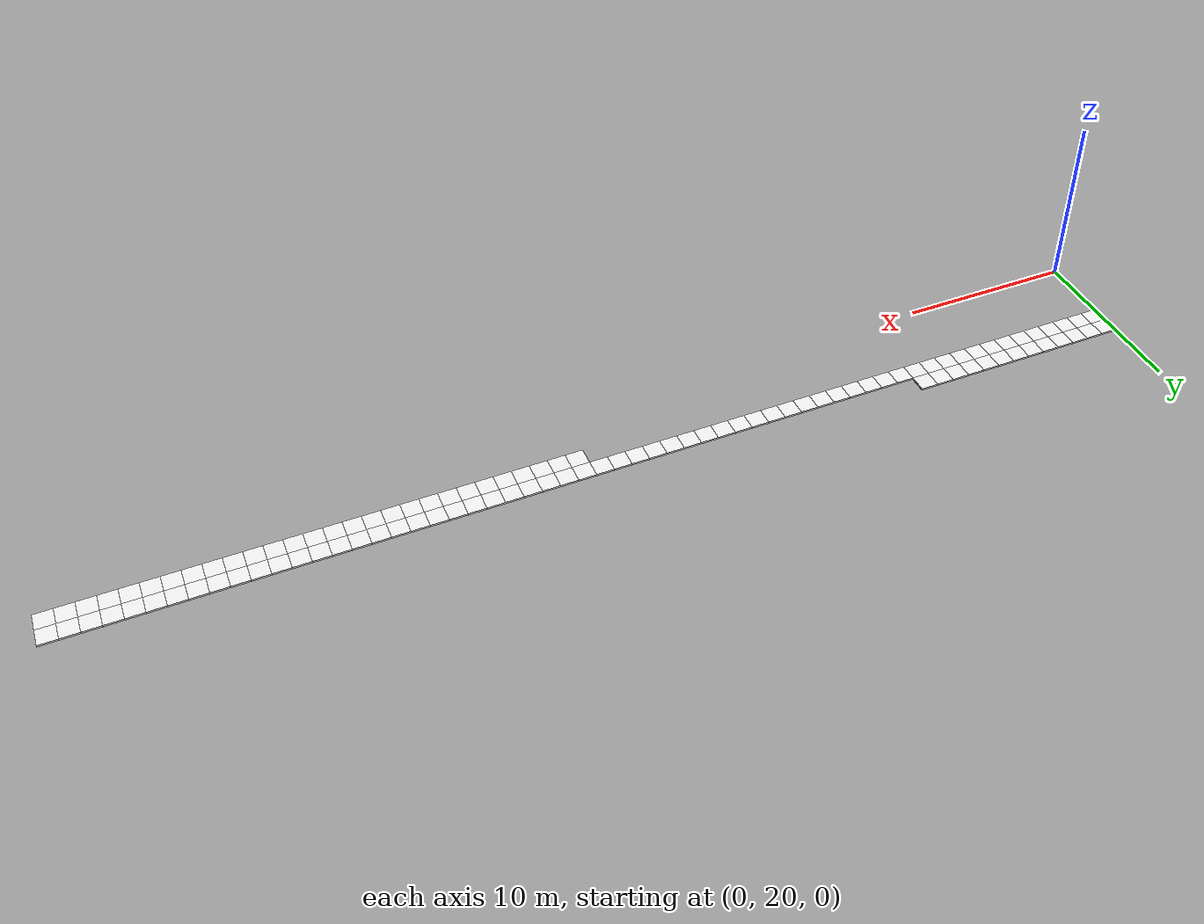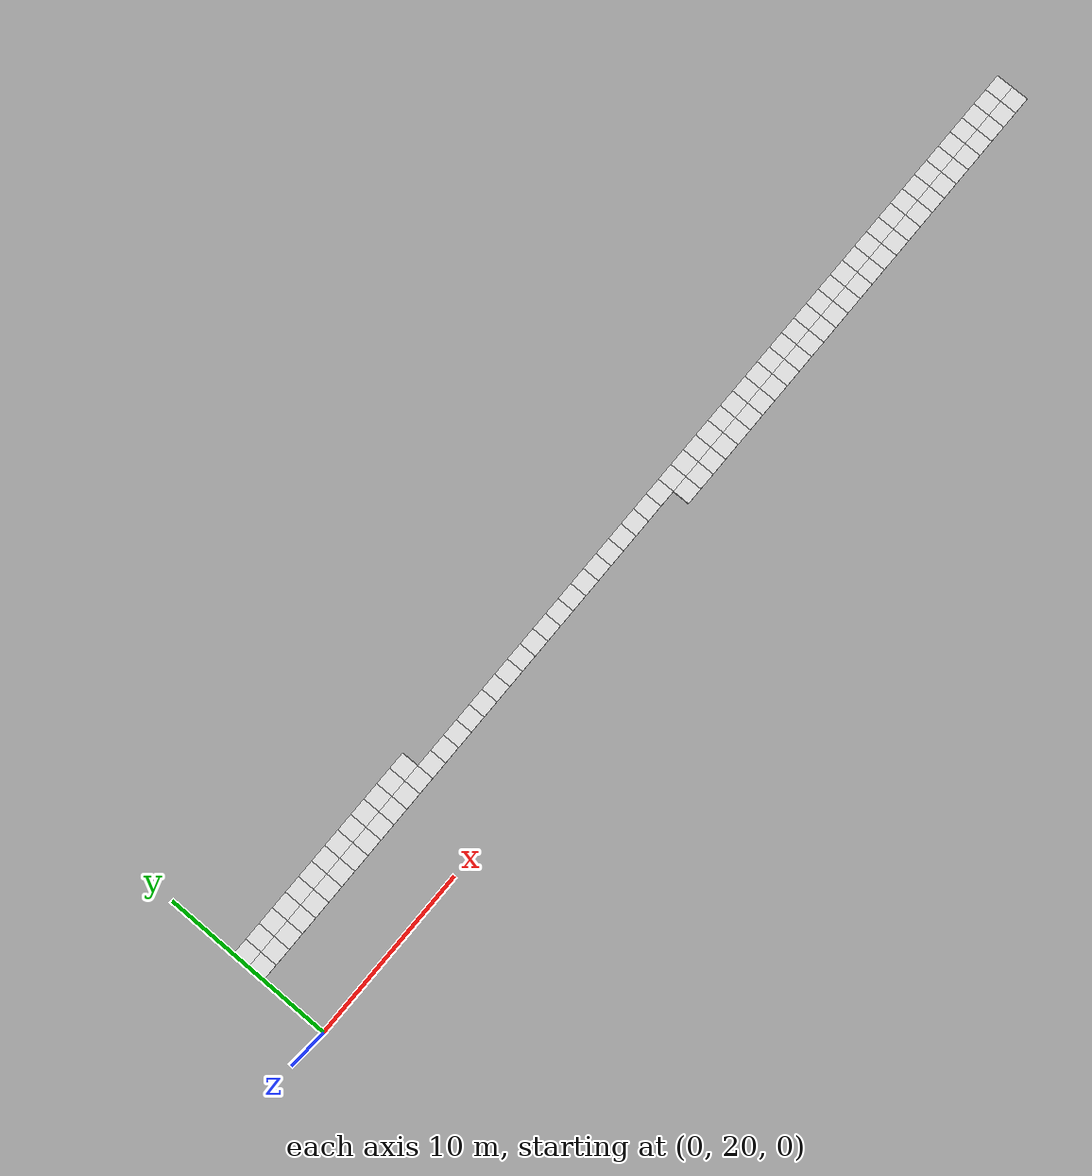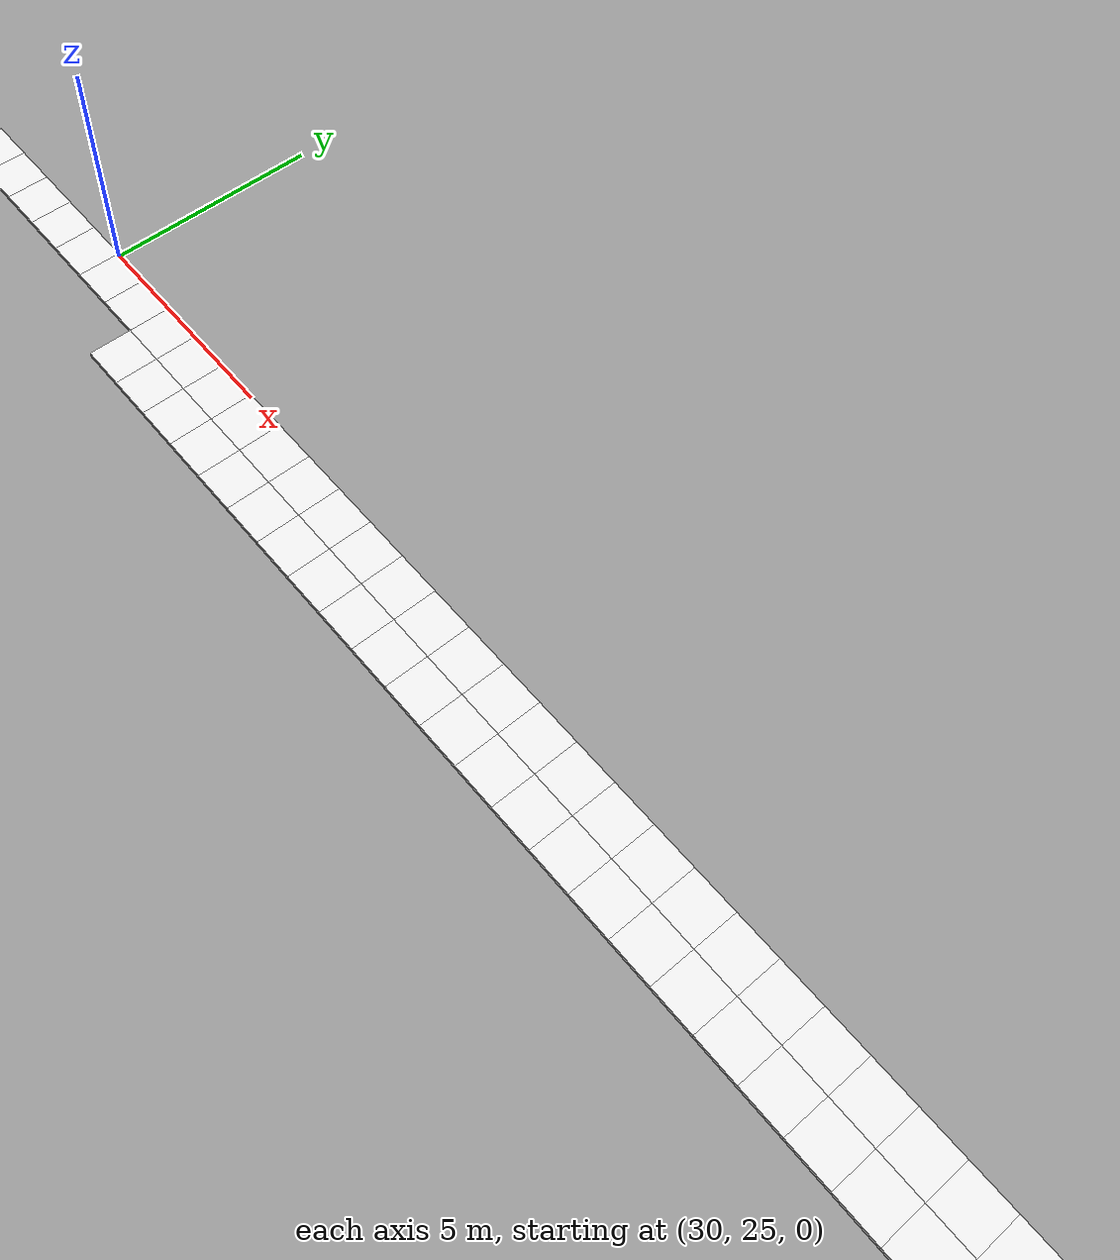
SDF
<sdf version="1.6">
 <world name="grid_world">
  <model name="cell_32_23">
   <static>true</static>
   <link name="link">
    <collision name="collision"><geometry><box><size>1 1 0.1</size></box></geometry></collision>
    <visual name="visual">
     <geometry><box><size>1 1 0.1</size></box></geometry>
     <material>
      <script><uri>file://media/materials/scripts/gazebo.material</uri><name>Gazebo/White</name></script>
     </material>
    </visual>
    <pose>32.5 23.5 0.05 0 0 0</pose>
   </link>
  </model>
  <model name="cell_33_23">
   <static>true</static>
   <link name="link">
    <collision name="collision"><geometry><box><size>1 1 0.1</size></box></geometry></collision>
    <visual name="visual">
     <geometry><box><size>1 1 0.1</size></box></geometry>
     <material>
      <script><uri>file://media/materials/scripts/gazebo.material</uri><name>Gazebo/White</name></script>
     </material>
    </visual>
    <pose>33.5 23.5 0.05 0 0 0</pose>
   </link>
  </model>
  <model name="cell_34_23">
   <static>true</static>
   <link name="link">
    <collision name="collision"><geometry><box><size>1 1 0.1</size></box></geometry></collision>
    <visual name="visual">
     <geometry><box><size>1 1 0.1</size></box></geometry>
     <material>
      <script><uri>file://media/materials/scripts/gazebo.material</uri><name>Gazebo/White</name></script>
     </material>
    </visual>
    <pose>34.5 23.5 0.05 0 0 0</pose>
   </link>
  </model>
  <model name="cell_35_23">
   <static>true</static>
   <link name="link">
    <collision name="collision"><geometry><box><size>1 1 0.1</size></box></geometry></collision>
    <visual name="visual">
     <geometry><box><size>1 1 0.1</size></box></geometry>
     <material>
      <script><uri>file://media/materials/scripts/gazebo.material</uri><name>Gazebo/White</name></script>
     </material>
    </visual>
    <pose>35.5 23.5 0.05 0 0 0</pose>
   </link>
  </model>
  <model name="cell_36_23">
   <static>true</static>
   <link name="link">
    <collision name="collision"><geometry><box><size>1 1 0.1</size></box></geometry></collision>
    <visual name="visual">
     <geometry><box><size>1 1 0.1</size></box></geometry>
     <material>
      <script><uri>file://media/materials/scripts/gazebo.material</uri><name>Gazebo/White</name></script>
     </material>
    </visual>
    <pose>36.5 23.5 0.05 0 0 0</pose>
   </link>
  </model>
  <model name="cell_37_23">
   <static>true</static>
   <link name="link">
    <collision name="collision"><geometry><box><size>1 1 0.1</size></box></geometry></collision>
    <visual name="visual">
     <geometry><box><size>1 1 0.1</size></box></geometry>
     <material>
      <script><uri>file://media/materials/scripts/gazebo.material</uri><name>Gazebo/White</name></script>
     </material>
    </visual>
    <pose>37.5 23.5 0.05 0 0 0</pose>
   </link>
  </model>
  <model name="cell_38_23">
   <static>true</static>
   <link name="link">
    <collision name="collision"><geometry><box><size>1 1 0.1</size></box></geometry></collision>
    <visual name="visual">
     <geometry><box><size>1 1 0.1</size></box></geometry>
     <material>
      <script><uri>file://media/materials/scripts/gazebo.material</uri><name>Gazebo/White</name></script>
     </material>
    </visual>
    <pose>38.5 23.5 0.05 0 0 0</pose>
   </link>
  </model>
  <model name="cell_39_23">
   <static>true</static>
   <link name="link">
    <collision name="collision"><geometry><box><size>1 1 0.1</size></box></geometry></collision>
    <visual name="visual">
     <geometry><box><size>1 1 0.1</size></box></geometry>
     <material>
      <script><uri>file://media/materials/scripts/gazebo.material</uri><name>Gazebo/White</name></script>
     </material>
    </visual>
    <pose>39.5 23.5 0.05 0 0 0</pose>
   </link>
  </model>
  <model name="cell_40_23">
   <static>true</static>
   <link name="link">
    <collision name="collision"><geometry><box><size>1 1 0.1</size></box></geometry></collision>
    <visual name="visual">
     <geometry><box><size>1 1 0.1</size></box></geometry>
     <material>
      <script><uri>file://media/materials/scripts/gazebo.material</uri><name>Gazebo/White</name></script>
     </material>
    </visual>
    <pose>40.5 23.5 0.05 0 0 0</pose>
   </link>
  </model>
  <model name="cell_41_23">
   <static>true</static>
   <link name="link">
    <collision name="collision"><geometry><box><size>1 1 0.1</size></box></geometry></collision>
    <visual name="visual">
     <geometry><box><size>1 1 0.1</size></box></geometry>
     <material>
      <script><uri>file://media/materials/scripts/gazebo.material</uri><name>Gazebo/White</name></script>
     </material>
    </visual>
    <pose>41.5 23.5 0.05 0 0 0</pose>
   </link>
  </model>
  <model name="cell_42_23">
   <static>true</static>
   <link name="link">
    <collision name="collision"><geometry><box><size>1 1 0.1</size></box></geometry></collision>
    <visual name="visual">
     <geometry><box><size>1 1 0.1</size></box></geometry>
     <material>
      <script><uri>file://media/materials/scripts/gazebo.material</uri><name>Gazebo/White</name></script>
     </material>
    </visual>
    <pose>42.5 23.5 0.05 0 0 0</pose>
   </link>
  </model>
  <model name="cell_43_23">
   <static>true</static>
   <link name="link">
    <collision name="collision"><geometry><box><size>1 1 0.1</size></box></geometry></collision>
    <visual name="visual">
     <geometry><box><size>1 1 0.1</size></box></geometry>
     <material>
      <script><uri>file://media/materials/scripts/gazebo.material</uri><name>Gazebo/White</name></script>
     </material>
    </visual>
    <pose>43.5 23.5 0.05 0 0 0</pose>
   </link>
  </model>
  <model name="cell_44_23">
   <static>true</static>
   <link name="link">
    <collision name="collision"><geometry><box><size>1 1 0.1</size></box></geometry></collision>
    <visual name="visual">
     <geometry><box><size>1 1 0.1</size></box></geometry>
     <material>
      <script><uri>file://media/materials/scripts/gazebo.material</uri><name>Gazebo/White</name></script>
     </material>
    </visual>
    <pose>44.5 23.5 0.05 0 0 0</pose>
   </link>
  </model>
  <model name="cell_45_23">
   <static>true</static>
   <link name="link">
    <collision name="collision"><geometry><box><size>1 1 0.1</size></box></geometry></collision>
    <visual name="visual">
     <geometry><box><size>1 1 0.1</size></box></geometry>
     <material>
      <script><uri>file://media/materials/scripts/gazebo.material</uri><name>Gazebo/White</name></script>
     </material>
    </visual>
    <pose>45.5 23.5 0.05 0 0 0</pose>
   </link>
  </model>
  <model name="cell_46_23">
   <static>true</static>
   <link name="link">
    <collision name="collision"><geometry><box><size>1 1 0.1</size></box></geometry></collision>
    <visual name="visual">
     <geometry><box><size>1 1 0.1</size></box></geometry>
     <material>
      <script><uri>file://media/materials/scripts/gazebo.material</uri><name>Gazebo/White</name></script>
     </material>
    </visual>
    <pose>46.5 23.5 0.05 0 0 0</pose>
   </link>
  </model>
  <model name="cell_47_23">
   <static>true</static>
   <link name="link">
    <collision name="collision"><geometry><box><size>1 1 0.1</size></box></geometry></collision>
    <visual name="visual">
     <geometry><box><size>1 1 0.1</size></box></geometry>
     <material>
      <script><uri>file://media/materials/scripts/gazebo.material</uri><name>Gazebo/White</name></script>
     </material>
    </visual>
    <pose>47.5 23.5 0.05 0 0 0</pose>
   </link>
  </model>
  <model name="cell_48_23">
   <static>true</static>
   <link name="link">
    <collision name="collision"><geometry><box><size>1 1 0.1</size></box></geometry></collision>
    <visual name="visual">
     <geometry><box><size>1 1 0.1</size></box></geometry>
     <material>
      <script><uri>file://media/materials/scripts/gazebo.material</uri><name>Gazebo/White</name></script>
     </material>
    </visual>
    <pose>48.5 23.5 0.05 0 0 0</pose>
   </link>
  </model>
  <model name="cell_49_23">
   <static>true</static>
   <link name="link">
    <collision name="collision"><geometry><box><size>1 1 0.1</size></box></geometry></collision>
    <visual name="visual">
     <geometry><box><size>1 1 0.1</size></box></geometry>
     <material>
      <script><uri>file://media/materials/scripts/gazebo.material</uri><name>Gazebo/White</name></script>
     </material>
    </visual>
    <pose>49.5 23.5 0.05 0 0 0</pose>
   </link>
  </model>
  <model name="cell_50_23">
   <static>true</static>
   <link name="link">
    <collision name="collision"><geometry><box><size>1 1 0.1</size></box></geometry></collision>
    <visual name="visual">
     <geometry><box><size>1 1 0.1</size></box></geometry>
     <material>
      <script><uri>file://media/materials/scripts/gazebo.material</uri><name>Gazebo/White</name></script>
     </material>
    </visual>
    <pose>50.5 23.5 0.05 0 0 0</pose>
   </link>
  </model>
  <model name="cell_51_23">
   <static>true</static>
   <link name="link">
    <collision name="collision"><geometry><box><size>1 1 0.1</size></box></geometry></collision>
    <visual name="visual">
     <geometry><box><size>1 1 0.1</size></box></geometry>
     <material>
      <script><uri>file://media/materials/scripts/gazebo.material</uri><name>Gazebo/White</name></script>
     </material>
    </visual>
    <pose>51.5 23.5 0.05 0 0 0</pose>
   </link>
  </model>
  <model name="cell_52_23">
   <static>true</static>
   <link name="link">
    <collision name="collision"><geometry><box><size>1 1 0.1</size></box></geometry></collision>
    <visual name="visual">
     <geometry><box><size>1 1 0.1</size></box></geometry>
     <material>
      <script><uri>file://media/materials/scripts/gazebo.material</uri><name>Gazebo/White</name></script>
     </material>
    </visual>
    <pose>52.5 23.5 0.05 0 0 0</pose>
   </link>
  </model>
  <model name="cell_53_23">
   <static>true</static>
   <link name="link">
    <collision name="collision"><geometry><box><size>1 1 0.1</size></box></geometry></collision>
    <visual name="visual">
     <geometry><box><size>1 1 0.1</size></box></geometry>
     <material>
      <script><uri>file://media/materials/scripts/gazebo.material</uri><name>Gazebo/White</name></script>
     </material>
    </visual>
    <pose>53.5 23.5 0.05 0 0 0</pose>
   </link>
  </model>
  <model name="cell_54_23">
   <static>true</static>
   <link name="link">
    <collision name="collision"><geometry><box><size>1 1 0.1</size></box></geometry></collision>
    <visual name="visual">
     <geometry><box><size>1 1 0.1</size></box></geometry>
     <material>
      <script><uri>file://media/materials/scripts/gazebo.material</uri><name>Gazebo/White</name></script>
     </material>
    </visual>
    <pose>54.5 23.5 0.05 0 0 0</pose>
   </link>
  </model>
  <model name="cell_55_23">
   <static>true</static>
   <link name="link">
    <collision name="collision"><geometry><box><size>1 1 0.1</size></box></geometry></collision>
    <visual name="visual">
     <geometry><box><size>1 1 0.1</size></box></geometry>
     <material>
      <script><uri>file://media/materials/scripts/gazebo.material</uri><name>Gazebo/White</name></script>
     </material>
    </visual>
    <pose>55.5 23.5 0.05 0 0 0</pose>
   </link>
  </model>
  <model name="cell_56_23">
   <static>true</static>
   <link name="link">
    <collision name="collision"><geometry><box><size>1 1 0.1</size></box></geometry></collision>
    <visual name="visual">
     <geometry><box><size>1 1 0.1</size></box></geometry>
     <material>
      <script><uri>file://media/materials/scripts/gazebo.material</uri><name>Gazebo/White</name></script>
     </material>
    </visual>
    <pose>56.5 23.5 0.05 0 0 0</pose>
   </link>
  </model>
  <model name="cell_57_23">
   <static>true</static>
   <link name="link">
    <collision name="collision"><geometry><box><size>1 1 0.1</size></box></geometry></collision>
    <visual name="visual">
     <geometry><box><size>1 1 0.1</size></box></geometry>
     <material>
      <script><uri>file://media/materials/scripts/gazebo.material</uri><name>Gazebo/White</name></script>
     </material>
    </visual>
    <pose>57.5 23.5 0.05 0 0 0</pose>
   </link>
  </model>
  <model name="cell_58_23">
   <static>true</static>
   <link name="link">
    <collision name="collision"><geometry><box><size>1 1 0.1</size></box></geometry></collision>
    <visual name="visual">
     <geometry><box><size>1 1 0.1</size></box></geometry>
     <material>
      <script><uri>file://media/materials/scripts/gazebo.material</uri><name>Gazebo/White</name></script>
     </material>
    </visual>
    <pose>58.5 23.5 0.05 0 0 0</pose>
   </link>
  </model>
  <model name="cell_59_23">
   <static>true</static>
   <link name="link">
    <collision name="collision"><geometry><box><size>1 1 0.1</size></box></geometry></collision>
    <visual name="visual">
     <geometry><box><size>1 1 0.1</size></box></geometry>
     <material>
      <script><uri>file://media/materials/scripts/gazebo.material</uri><name>Gazebo/White</name></script>
     </material>
    </visual>
    <pose>59.5 23.5 0.05 0 0 0</pose>
   </link>
  </model>
  <model name="cell_0_24">
   <static>true</static>
   <link name="link">
    <collision name="collision"><geometry><box><size>1 1 0.1</size></box></geometry></collision>
    <visual name="visual">
     <geometry><box><size>1 1 0.1</size></box></geometry>
     <material>
      <script><uri>file://media/materials/scripts/gazebo.material</uri><name>Gazebo/White</name></script>
     </material>
    </visual>
    <pose>0.5 24.5 0.05 0 0 0</pose>
   </link>
  </model>
  <model name="cell_1_24">
   <static>true</static>
   <link name="link">
    <collision name="collision"><geometry><box><size>1 1 0.1</size></box></geometry></collision>
    <visual name="visual">
     <geometry><box><size>1 1 0.1</size></box></geometry>
     <material>
      <script><uri>file://media/materials/scripts/gazebo.material</uri><name>Gazebo/White</name></script>
     </material>
    </visual>
    <pose>1.5 24.5 0.05 0 0 0</pose>
   </link>
  </model>
  <model name="cell_2_24">
   <static>true</static>
   <link name="link">
    <collision name="collision"><geometry><box><size>1 1 0.1</size></box></geometry></collision>
    <visual name="visual">
     <geometry><box><size>1 1 0.1</size></box></geometry>
     <material>
      <script><uri>file://media/materials/scripts/gazebo.material</uri><name>Gazebo/White</name></script>
     </material>
    </visual>
    <pose>2.5 24.5 0.05 0 0 0</pose>
   </link>
  </model>
  <model name="cell_3_24">
   <static>true</static>
   <link name="link">
    <collision name="collision"><geometry><box><size>1 1 0.1</size></box></geometry></collision>
    <visual name="visual">
     <geometry><box><size>1 1 0.1</size></box></geometry>
     <material>
      <script><uri>file://media/materials/scripts/gazebo.material</uri><name>Gazebo/White</name></script>
     </material>
    </visual>
    <pose>3.5 24.5 0.05 0 0 0</pose>
   </link>
  </model>
  <model name="cell_4_24">
   <static>true</static>
   <link name="link">
    <collision name="collision"><geometry><box><size>1 1 0.1</size></box></geometry></collision>
    <visual name="visual">
     <geometry><box><size>1 1 0.1</size></box></geometry>
     <material>
      <script><uri>file://media/materials/scripts/gazebo.material</uri><name>Gazebo/White</name></script>
     </material>
    </visual>
    <pose>4.5 24.5 0.05 0 0 0</pose>
   </link>
  </model>
  <model name="cell_5_24">
   <static>true</static>
   <link name="link">
    <collision name="collision"><geometry><box><size>1 1 0.1</size></box></geometry></collision>
    <visual name="visual">
     <geometry><box><size>1 1 0.1</size></box></geometry>
     <material>
      <script><uri>file://media/materials/scripts/gazebo.material</uri><name>Gazebo/White</name></script>
     </material>
    </visual>
    <pose>5.5 24.5 0.05 0 0 0</pose>
   </link>
  </model>
  <model name="cell_6_24">
   <static>true</static>
   <link name="link">
    <collision name="collision"><geometry><box><size>1 1 0.1</size></box></geometry></collision>
    <visual name="visual">
     <geometry><box><size>1 1 0.1</size></box></geometry>
     <material>
      <script><uri>file://media/materials/scripts/gazebo.material</uri><name>Gazebo/White</name></script>
     </material>
    </visual>
    <pose>6.5 24.5 0.05 0 0 0</pose>
   </link>
  </model>
  <model name="cell_7_24">
   <static>true</static>
   <link name="link">
    <collision name="collision"><geometry><box><size>1 1 0.1</size></box></geometry></collision>
    <visual name="visual">
     <geometry><box><size>1 1 0.1</size></box></geometry>
     <material>
      <script><uri>file://media/materials/scripts/gazebo.material</uri><name>Gazebo/White</name></script>
     </material>
    </visual>
    <pose>7.5 24.5 0.05 0 0 0</pose>
   </link>
  </model>
  <model name="cell_8_24">
   <static>true</static>
   <link name="link">
    <collision name="collision"><geometry><box><size>1 1 0.1</size></box></geometry></collision>
    <visual name="visual">
     <geometry><box><size>1 1 0.1</size></box></geometry>
     <material>
      <script><uri>file://media/materials/scripts/gazebo.material</uri><name>Gazebo/White</name></script>
     </material>
    </visual>
    <pose>8.5 24.5 0.05 0 0 0</pose>
   </link>
  </model>
  <model name="cell_9_24">
   <static>true</static>
   <link name="link">
    <collision name="collision"><geometry><box><size>1 1 0.1</size></box></geometry></collision>
    <visual name="visual">
     <geometry><box><size>1 1 0.1</size></box></geometry>
     <material>
      <script><uri>file://media/materials/scripts/gazebo.material</uri><name>Gazebo/White</name></script>
     </material>
    </visual>
    <pose>9.5 24.5 0.05 0 0 0</pose>
   </link>
  </model>
  <model name="cell_10_24">
   <static>true</static>
   <link name="link">
    <collision name="collision"><geometry><box><size>1 1 0.1</size></box></geometry></collision>
    <visual name="visual">
     <geometry><box><size>1 1 0.1</size></box></geometry>
     <material>
      <script><uri>file://media/materials/scripts/gazebo.material</uri><name>Gazebo/White</name></script>
     </material>
    </visual>
    <pose>10.5 24.5 0.05 0 0 0</pose>
   </link>
  </model>
  <model name="cell_11_24">
   <static>true</static>
   <link name="link">
    <collision name="collision"><geometry><box><size>1 1 0.1</size></box></geometry></collision>
    <visual name="visual">
     <geometry><box><size>1 1 0.1</size></box></geometry>
     <material>
      <script><uri>file://media/materials/scripts/gazebo.material</uri><name>Gazebo/White</name></script>
     </material>
    </visual>
    <pose>11.5 24.5 0.05 0 0 0</pose>
   </link>
  </model>
  <model name="cell_12_24">
   <static>true</static>
   <link name="link">
    <collision name="collision"><geometry><box><size>1 1 0.1</size></box></geometry></collision>
    <visual name="visual">
     <geometry><box><size>1 1 0.1</size></box></geometry>
     <material>
      <script><uri>file://media/materials/scripts/gazebo.material</uri><name>Gazebo/White</name></script>
     </material>
    </visual>
    <pose>12.5 24.5 0.05 0 0 0</pose>
   </link>
  </model>
  <model name="cell_13_24">
   <static>true</static>
   <link name="link">
    <collision name="collision"><geometry><box><size>1 1 0.1</size></box></geometry></collision>
    <visual name="visual">
     <geometry><box><size>1 1 0.1</size></box></geometry>
     <material>
      <script><uri>file://media/materials/scripts/gazebo.material</uri><name>Gazebo/White</name></script>
     </material>
    </visual>
    <pose>13.5 24.5 0.05 0 0 0</pose>
   </link>
  </model>
  <model name="cell_14_24">
   <static>true</static>
   <link name="link">
    <collision name="collision"><geometry><box><size>1 1 0.1</size></box></geometry></collision>
    <visual name="visual">
     <geometry><box><size>1 1 0.1</size></box></geometry>
     <material>
      <script><uri>file://media/materials/scripts/gazebo.material</uri><name>Gazebo/White</name></script>
     </material>
    </visual>
    <pose>14.5 24.5 0.05 0 0 0</pose>
   </link>
  </model>
  <model name="cell_15_24">
   <static>true</static>
   <link name="link">
    <collision name="collision"><geometry><box><size>1 1 0.1</size></box></geometry></collision>
    <visual name="visual">
     <geometry><box><size>1 1 0.1</size></box></geometry>
     <material>
      <script><uri>file://media/materials/scripts/gazebo.material</uri><name>Gazebo/White</name></script>
     </material>
    </visual>
    <pose>15.5 24.5 0.05 0 0 0</pose>
   </link>
  </model>
  <model name="cell_16_24">
   <static>true</static>
   <link name="link">
    <collision name="collision"><geometry><box><size>1 1 0.1</size></box></geometry></collision>
    <visual name="visual">
     <geometry><box><size>1 1 0.1</size></box></geometry>
     <material>
      <script><uri>file://media/materials/scripts/gazebo.material</uri><name>Gazebo/White</name></script>
     </material>
    </visual>
    <pose>16.5 24.5 0.05 0 0 0</pose>
   </link>
  </model>
  <model name="cell_17_24">
   <static>true</static>
   <link name="link">
    <collision name="collision"><geometry><box><size>1 1 0.1</size></box></geometry></collision>
    <visual name="visual">
     <geometry><box><size>1 1 0.1</size></box></geometry>
     <material>
      <script><uri>file://media/materials/scripts/gazebo.material</uri><name>Gazebo/White</name></script>
     </material>
    </visual>
    <pose>17.5 24.5 0.05 0 0 0</pose>
   </link>
  </model>
  <model name="cell_18_24">
   <static>true</static>
   <link name="link">
    <collision name="collision"><geometry><box><size>1 1 0.1</size></box></geometry></collision>
    <visual name="visual">
     <geometry><box><size>1 1 0.1</size></box></geometry>
     <material>
      <script><uri>file://media/materials/scripts/gazebo.material</uri><name>Gazebo/White</name></script>
     </material>
    </visual>
    <pose>18.5 24.5 0.05 0 0 0</pose>
   </link>
  </model>
  <model name="cell_19_24">
   <static>true</static>
   <link name="link">
    <collision name="collision"><geometry><box><size>1 1 0.1</size></box></geometry></collision>
    <visual name="visual">
     <geometry><box><size>1 1 0.1</size></box></geometry>
     <material>
      <script><uri>file://media/materials/scripts/gazebo.material</uri><name>Gazebo/White</name></script>
     </material>
    </visual>
    <pose>19.5 24.5 0.05 0 0 0</pose>
   </link>
  </model>
  <model name="cell_20_24">
   <static>true</static>
   <link name="link">
    <collision name="collision"><geometry><box><size>1 1 0.1</size></box></geometry></collision>
    <visual name="visual">
     <geometry><box><size>1 1 0.1</size></box></geometry>
     <material>
      <script><uri>file://media/materials/scripts/gazebo.material</uri><name>Gazebo/White</name></script>
     </material>
    </visual>
    <pose>20.5 24.5 0.05 0 0 0</pose>
   </link>
  </model>
  <model name="cell_21_24">
   <static>true</static>
   <link name="link">
    <collision name="collision"><geometry><box><size>1 1 0.1</size></box></geometry></collision>
    <visual name="visual">
     <geometry><box><size>1 1 0.1</size></box></geometry>
     <material>
      <script><uri>file://media/materials/scripts/gazebo.material</uri><name>Gazebo/White</name></script>
     </material>
    </visual>
    <pose>21.5 24.5 0.05 0 0 0</pose>
   </link>
  </model>
  <model name="cell_22_24">
   <static>true</static>
   <link name="link">
    <collision name="collision"><geometry><box><size>1 1 0.1</size></box></geometry></collision>
    <visual name="visual">
     <geometry><box><size>1 1 0.1</size></box></geometry>
     <material>
      <script><uri>file://media/materials/scripts/gazebo.material</uri><name>Gazebo/White</name></script>
     </material>
    </visual>
    <pose>22.5 24.5 0.05 0 0 0</pose>
   </link>
  </model>
  <model name="cell_23_24">
   <static>true</static>
   <link name="link">
    <collision name="collision"><geometry><box><size>1 1 0.1</size></box></geometry></collision>
    <visual name="visual">
     <geometry><box><size>1 1 0.1</size></box></geometry>
     <material>
      <script><uri>file://media/materials/scripts/gazebo.material</uri><name>Gazebo/White</name></script>
     </material>
    </visual>
    <pose>23.5 24.5 0.05 0 0 0</pose>
   </link>
  </model>
  <model name="cell_24_24">
   <static>true</static>
   <link name="link">
    <collision name="collision"><geometry><box><size>1 1 0.1</size></box></geometry></collision>
    <visual name="visual">
     <geometry><box><size>1 1 0.1</size></box></geometry>
     <material>
      <script><uri>file://media/materials/scripts/gazebo.material</uri><name>Gazebo/White</name></script>
     </material>
    </visual>
    <pose>24.5 24.5 0.05 0 0 0</pose>
   </link>
  </model>
  <model name="cell_25_24">
   <static>true</static>
   <link name="link">
    <collision name="collision"><geometry><box><size>1 1 0.1</size></box></geometry></collision>
    <visual name="visual">
     <geometry><box><size>1 1 0.1</size></box></geometry>
     <material>
      <script><uri>file://media/materials/scripts/gazebo.material</uri><name>Gazebo/White</name></script>
     </material>
    </visual>
    <pose>25.5 24.5 0.05 0 0 0</pose>
   </link>
  </model>
  <model name="cell_26_24">
   <static>true</static>
   <link name="link">
    <collision name="collision"><geometry><box><size>1 1 0.1</size></box></geometry></collision>
    <visual name="visual">
     <geometry><box><size>1 1 0.1</size></box></geometry>
     <material>
      <script><uri>file://media/materials/scripts/gazebo.material</uri><name>Gazebo/White</name></script>
     </material>
    </visual>
    <pose>26.5 24.5 0.05 0 0 0</pose>
   </link>
  </model>
  <model name="cell_27_24">
   <static>true</static>
   <link name="link">
    <collision name="collision"><geometry><box><size>1 1 0.1</size></box></geometry></collision>
    <visual name="visual">
     <geometry><box><size>1 1 0.1</size></box></geometry>
     <material>
      <script><uri>file://media/materials/scripts/gazebo.material</uri><name>Gazebo/White</name></script>
     </material>
    </visual>
    <pose>27.5 24.5 0.05 0 0 0</pose>
   </link>
  </model>
  <model name="cell_28_24">
   <static>true</static>
   <link name="link">
    <collision name="collision"><geometry><box><size>1 1 0.1</size></box></geometry></collision>
    <visual name="visual">
     <geometry><box><size>1 1 0.1</size></box></geometry>
     <material>
      <script><uri>file://media/materials/scripts/gazebo.material</uri><name>Gazebo/White</name></script>
     </material>
    </visual>
    <pose>28.5 24.5 0.05 0 0 0</pose>
   </link>
  </model>
  <model name="cell_29_24">
   <static>true</static>
   <link name="link">
    <collision name="collision"><geometry><box><size>1 1 0.1</size></box></geometry></collision>
    <visual name="visual">
     <geometry><box><size>1 1 0.1</size></box></geometry>
     <material>
      <script><uri>file://media/materials/scripts/gazebo.material</uri><name>Gazebo/White</name></script>
     </material>
    </visual>
    <pose>29.5 24.5 0.05 0 0 0</pose>
   </link>
  </model>
  <model name="cell_30_24">
   <static>true</static>
   <link name="link">
    <collision name="collision"><geometry><box><size>1 1 0.1</size></box></geometry></collision>
    <visual name="visual">
     <geometry><box><size>1 1 0.1</size></box></geometry>
     <material>
      <script><uri>file://media/materials/scripts/gazebo.material</uri><name>Gazebo/White</name></script>
     </material>
    </visual>
    <pose>30.5 24.5 0.05 0 0 0</pose>
   </link>
  </model>
  <model name="cell_31_24">
   <static>true</static>
   <link name="link">
    <collision name="collision"><geometry><box><size>1 1 0.1</size></box></geometry></collision>
    <visual name="visual">
     <geometry><box><size>1 1 0.1</size></box></geometry>
     <material>
      <script><uri>file://media/materials/scripts/gazebo.material</uri><name>Gazebo/White</name></script>
     </material>
    </visual>
    <pose>31.5 24.5 0.05 0 0 0</pose>
   </link>
  </model>
  <model name="cell_32_24">
   <static>true</static>
   <link name="link">
    <collision name="collision"><geometry><box><size>1 1 0.1</size></box></geometry></collision>
    <visual name="visual">
     <geometry><box><size>1 1 0.1</size></box></geometry>
     <material>
      <script><uri>file://media/materials/scripts/gazebo.material</uri><name>Gazebo/White</name></script>
     </material>
    </visual>
    <pose>32.5 24.5 0.05 0 0 0</pose>
   </link>
  </model>
  <model name="cell_33_24">
   <static>true</static>
   <link name="link">
    <collision name="collision"><geometry><box><size>1 1 0.1</size></box></geometry></collision>
    <visual name="visual">
     <geometry><box><size>1 1 0.1</size></box></geometry>
     <material>
      <script><uri>file://media/materials/scripts/gazebo.material</uri><name>Gazebo/White</name></script>
     </material>
    </visual>
    <pose>33.5 24.5 0.05 0 0 0</pose>
   </link>
  </model>
  <model name="cell_34_24">
   <static>true</static>
   <link name="link">
    <collision name="collision"><geometry><box><size>1 1 0.1</size></box></geometry></collision>
    <visual name="visual">
     <geometry><box><size>1 1 0.1</size></box></geometry>
     <material>
      <script><uri>file://media/materials/scripts/gazebo.material</uri><name>Gazebo/White</name></script>
     </material>
    </visual>
    <pose>34.5 24.5 0.05 0 0 0</pose>
   </link>
  </model>
  <model name="cell_35_24">
   <static>true</static>
   <link name="link">
    <collision name="collision"><geometry><box><size>1 1 0.1</size></box></geometry></collision>
    <visual name="visual">
     <geometry><box><size>1 1 0.1</size></box></geometry>
     <material>
      <script><uri>file://media/materials/scripts/gazebo.material</uri><name>Gazebo/White</name></script>
     </material>
    </visual>
    <pose>35.5 24.5 0.05 0 0 0</pose>
   </link>
  </model>
  <model name="cell_36_24">
   <static>true</static>
   <link name="link">
    <collision name="collision"><geometry><box><size>1 1 0.1</size></box></geometry></collision>
    <visual name="visual">
     <geometry><box><size>1 1 0.1</size></box></geometry>
     <material>
      <script><uri>file://media/materials/scripts/gazebo.material</uri><name>Gazebo/White</name></script>
     </material>
    </visual>
    <pose>36.5 24.5 0.05 0 0 0</pose>
   </link>
  </model>
  <model name="cell_37_24">
   <static>true</static>
   <link name="link">
    <collision name="collision"><geometry><box><size>1 1 0.1</size></box></geometry></collision>
    <visual name="visual">
     <geometry><box><size>1 1 0.1</size></box></geometry>
     <material>
      <script><uri>file://media/materials/scripts/gazebo.material</uri><name>Gazebo/White</name></script>
     </material>
    </visual>
    <pose>37.5 24.5 0.05 0 0 0</pose>
   </link>
  </model>
  <model name="cell_38_24">
   <static>true</static>
   <link name="link">
    <collision name="collision"><geometry><box><size>1 1 0.1</size></box></geometry></collision>
    <visual name="visual">
     <geometry><box><size>1 1 0.1</size></box></geometry>
     <material>
      <script><uri>file://media/materials/scripts/gazebo.material</uri><name>Gazebo/White</name></script>
     </material>
    </visual>
    <pose>38.5 24.5 0.05 0 0 0</pose>
   </link>
  </model>
  <model name="cell_39_24">
   <static>true</static>
   <link name="link">
    <collision name="collision"><geometry><box><size>1 1 0.1</size></box></geometry></collision>
    <visual name="visual">
     <geometry><box><size>1 1 0.1</size></box></geometry>
     <material>
      <script><uri>file://media/materials/scripts/gazebo.material</uri><name>Gazebo/White</name></script>
     </material>
    </visual>
    <pose>39.5 24.5 0.05 0 0 0</pose>
   </link>
  </model>
  <model name="cell_40_24">
   <static>true</static>
   <link name="link">
    <collision name="collision"><geometry><box><size>1 1 0.1</size></box></geometry></collision>
    <visual name="visual">
     <geometry><box><size>1 1 0.1</size></box></geometry>
     <material>
      <script><uri>file://media/materials/scripts/gazebo.material</uri><name>Gazebo/White</name></script>
     </material>
    </visual>
    <pose>40.5 24.5 0.05 0 0 0</pose>
   </link>
  </model>
  <model name="cell_41_24">
   <static>true</static>
   <link name="link">
    <collision name="collision"><geometry><box><size>1 1 0.1</size></box></geometry></collision>
    <visual name="visual">
     <geometry><box><size>1 1 0.1</size></box></geometry>
     <material>
      <script><uri>file://media/materials/scripts/gazebo.material</uri><name>Gazebo/White</name></script>
     </material>
    </visual>
    <pose>41.5 24.5 0.05 0 0 0</pose>
   </link>
  </model>
  <model name="cell_42_24">
   <static>true</static>
   <link name="link">
    <collision name="collision"><geometry><box><size>1 1 0.1</size></box></geometry></collision>
    <visual name="visual">
     <geometry><box><size>1 1 0.1</size></box></geometry>
     <material>
      <script><uri>file://media/materials/scripts/gazebo.material</uri><name>Gazebo/White</name></script>
     </material>
    </visual>
    <pose>42.5 24.5 0.05 0 0 0</pose>
   </link>
  </model>
  <model name="cell_43_24">
   <static>true</static>
   <link name="link">
    <collision name="collision"><geometry><box><size>1 1 0.1</size></box></geometry></collision>
    <visual name="visual">
     <geometry><box><size>1 1 0.1</size></box></geometry>
     <material>
      <script><uri>file://media/materials/scripts/gazebo.material</uri><name>Gazebo/White</name></script>
     </material>
    </visual>
    <pose>43.5 24.5 0.05 0 0 0</pose>
   </link>
  </model>
  <model name="cell_44_24">
   <static>true</static>
   <link name="link">
    <collision name="collision"><geometry><box><size>1 1 0.1</size></box></geometry></collision>
    <visual name="visual">
     <geometry><box><size>1 1 0.1</size></box></geometry>
     <material>
      <script><uri>file://media/materials/scripts/gazebo.material</uri><name>Gazebo/White</name></script>
     </material>
    </visual>
    <pose>44.5 24.5 0.05 0 0 0</pose>
   </link>
  </model>
  <model name="cell_45_24">
   <static>true</static>
   <link name="link">
    <collision name="collision"><geometry><box><size>1 1 0.1</size></box></geometry></collision>
    <visual name="visual">
     <geometry><box><size>1 1 0.1</size></box></geometry>
     <material>
      <script><uri>file://media/materials/scripts/gazebo.material</uri><name>Gazebo/White</name></script>
     </material>
    </visual>
    <pose>45.5 24.5 0.05 0 0 0</pose>
   </link>
  </model>
  <model name="cell_46_24">
   <static>true</static>
   <link name="link">
    <collision name="collision"><geometry><box><size>1 1 0.1</size></box></geometry></collision>
    <visual name="visual">
     <geometry><box><size>1 1 0.1</size></box></geometry>
     <material>
      <script><uri>file://media/materials/scripts/gazebo.material</uri><name>Gazebo/White</name></script>
     </material>
    </visual>
    <pose>46.5 24.5 0.05 0 0 0</pose>
   </link>
  </model>
  <model name="cell_47_24">
   <static>true</static>
   <link name="link">
    <collision name="collision"><geometry><box><size>1 1 0.1</size></box></geometry></collision>
    <visual name="visual">
     <geometry><box><size>1 1 0.1</size></box></geometry>
     <material>
      <script><uri>file://media/materials/scripts/gazebo.material</uri><name>Gazebo/White</name></script>
     </material>
    </visual>
    <pose>47.5 24.5 0.05 0 0 0</pose>
   </link>
  </model>
  <model name="cell_48_24">
   <static>true</static>
   <link name="link">
    <collision name="collision"><geometry><box><size>1 1 0.1</size></box></geometry></collision>
    <visual name="visual">
     <geometry><box><size>1 1 0.1</size></box></geometry>
     <material>
      <script><uri>file://media/materials/scripts/gazebo.material</uri><name>Gazebo/White</name></script>
     </material>
    </visual>
    <pose>48.5 24.5 0.05 0 0 0</pose>
   </link>
  </model>
  <model name="cell_49_24">
   <static>true</static>
   <link name="link">
    <collision name="collision"><geometry><box><size>1 1 0.1</size></box></geometry></collision>
    <visual name="visual">
     <geometry><box><size>1 1 0.1</size></box></geometry>
     <material>
      <script><uri>file://media/materials/scripts/gazebo.material</uri><name>Gazebo/White</name></script>
     </material>
    </visual>
    <pose>49.5 24.5 0.05 0 0 0</pose>
   </link>
  </model>
  <model name="cell_50_24">
   <static>true</static>
   <link name="link">
    <collision name="collision"><geometry><box><size>1 1 0.1</size></box></geometry></collision>
    <visual name="visual">
     <geometry><box><size>1 1 0.1</size></box></geometry>
     <material>
      <script><uri>file://media/materials/scripts/gazebo.material</uri><name>Gazebo/White</name></script>
     </material>
    </visual>
    <pose>50.5 24.5 0.05 0 0 0</pose>
   </link>
  </model>
  <model name="cell_51_24">
   <static>true</static>
   <link name="link">
    <collision name="collision"><geometry><box><size>1 1 0.1</size></box></geometry></collision>
    <visual name="visual">
     <geometry><box><size>1 1 0.1</size></box></geometry>
     <material>
      <script><uri>file://media/materials/scripts/gazebo.material</uri><name>Gazebo/White</name></script>
     </material>
    </visual>
    <pose>51.5 24.5 0.05 0 0 0</pose>
   </link>
  </model>
  <model name="cell_52_24">
   <static>true</static>
   <link name="link">
    <collision name="collision"><geometry><box><size>1 1 0.1</size></box></geometry></collision>
    <visual name="visual">
     <geometry><box><size>1 1 0.1</size></box></geometry>
     <material>
      <script><uri>file://media/materials/scripts/gazebo.material</uri><name>Gazebo/White</name></script>
     </material>
    </visual>
    <pose>52.5 24.5 0.05 0 0 0</pose>
   </link>
  </model>
  <model name="cell_53_24">
   <static>true</static>
   <link name="link">
    <collision name="collision"><geometry><box><size>1 1 0.1</size></box></geometry></collision>
    <visual name="visual">
     <geometry><box><size>1 1 0.1</size></box></geometry>
     <material>
      <script><uri>file://media/materials/scripts/gazebo.material</uri><name>Gazebo/White</name></script>
     </material>
    </visual>
    <pose>53.5 24.5 0.05 0 0 0</pose>
   </link>
  </model>
  <model name="cell_54_24">
   <static>true</static>
   <link name="link">
    <collision name="collision"><geometry><box><size>1 1 0.1</size></box></geometry></collision>
    <visual name="visual">
     <geometry><box><size>1 1 0.1</size></box></geometry>
     <material>
      <script><uri>file://media/materials/scripts/gazebo.material</uri><name>Gazebo/White</name></script>
     </material>
    </visual>
    <pose>54.5 24.5 0.05 0 0 0</pose>
   </link>
  </model>
  <model name="cell_55_24">
   <static>true</static>
   <link name="link">
    <collision name="collision"><geometry><box><size>1 1 0.1</size></box></geometry></collision>
    <visual name="visual">
     <geometry><box><size>1 1 0.1</size></box></geometry>
     <material>
      <script><uri>file://media/materials/scripts/gazebo.material</uri><name>Gazebo/White</name></script>
     </material>
    </visual>
    <pose>55.5 24.5 0.05 0 0 0</pose>
   </link>
  </model>
  <model name="cell_56_24">
   <static>true</static>
   <link name="link">
    <collision name="collision"><geometry><box><size>1 1 0.1</size></box></geometry></collision>
    <visual name="visual">
     <geometry><box><size>1 1 0.1</size></box></geometry>
     <material>
      <script><uri>file://media/materials/scripts/gazebo.material</uri><name>Gazebo/White</name></script>
     </material>
    </visual>
    <pose>56.5 24.5 0.05 0 0 0</pose>
   </link>
  </model>
  <model name="cell_57_24">
   <static>true</static>
   <link name="link">
    <collision name="collision"><geometry><box><size>1 1 0.1</size></box></geometry></collision>
    <visual name="visual">
     <geometry><box><size>1 1 0.1</size></box></geometry>
     <material>
      <script><uri>file://media/materials/scripts/gazebo.material</uri><name>Gazebo/White</name></script>
     </material>
    </visual>
    <pose>57.5 24.5 0.05 0 0 0</pose>
   </link>
  </model>
  <model name="cell_58_24">
   <static>true</static>
   <link name="link">
    <collision name="collision"><geometry><box><size>1 1 0.1</size></box></geometry></collision>
    <visual name="visual">
     <geometry><box><size>1 1 0.1</size></box></geometry>
     <material>
      <script><uri>file://media/materials/scripts/gazebo.material</uri><name>Gazebo/White</name></script>
     </material>
    </visual>
    <pose>58.5 24.5 0.05 0 0 0</pose>
   </link>
  </model>
  <model name="cell_59_24">
   <static>true</static>
   <link name="link">
    <collision name="collision"><geometry><box><size>1 1 0.1</size></box></geometry></collision>
    <visual name="visual">
     <geometry><box><size>1 1 0.1</size></box></geometry>
     <material>
      <script><uri>file://media/materials/scripts/gazebo.material</uri><name>Gazebo/White</name></script>
     </material>
    </visual>
    <pose>59.5 24.5 0.05 0 0 0</pose>
   </link>
  </model>
  <model name="cell_0_25">
   <static>true</static>
   <link name="link">
    <collision name="collision"><geometry><box><size>1 1 0.1</size></box></geometry></collision>
    <visual name="visual">
     <geometry><box><size>1 1 0.1</size></box></geometry>
     <material>
      <script><uri>file://media/materials/scripts/gazebo.material</uri><name>Gazebo/White</name></script>
     </material>
    </visual>
    <pose>0.5 25.5 0.05 0 0 0</pose>
   </link>
  </model>
  <model name="cell_1_25">
   <static>true</static>
   <link name="link">
    <collision name="collision"><geometry><box><size>1 1 0.1</size></box></geometry></collision>
    <visual name="visual">
     <geometry><box><size>1 1 0.1</size></box></geometry>
     <material>
      <script><uri>file://media/materials/scripts/gazebo.material</uri><name>Gazebo/White</name></script>
     </material>
    </visual>
    <pose>1.5 25.5 0.05 0 0 0</pose>
   </link>
  </model>
  <model name="cell_2_25">
   <static>true</static>
   <link name="link">
    <collision name="collision"><geometry><box><size>1 1 0.1</size></box></geometry></collision>
    <visual name="visual">
     <geometry><box><size>1 1 0.1</size></box></geometry>
     <material>
      <script><uri>file://media/materials/scripts/gazebo.material</uri><name>Gazebo/White</name></script>
     </material>
    </visual>
    <pose>2.5 25.5 0.05 0 0 0</pose>
   </link>
  </model>
  <model name="cell_3_25">
   <static>true</static>
   <link name="link">
    <collision name="collision"><geometry><box><size>1 1 0.1</size></box></geometry></collision>
    <visual name="visual">
     <geometry><box><size>1 1 0.1</size></box></geometry>
     <material>
      <script><uri>file://media/materials/scripts/gazebo.material</uri><name>Gazebo/White</name></script>
     </material>
    </visual>
    <pose>3.5 25.5 0.05 0 0 0</pose>
   </link>
  </model>
  <model name="cell_4_25">
   <static>true</static>
   <link name="link">
    <collision name="collision"><geometry><box><size>1 1 0.1</size></box></geometry></collision>
    <visual name="visual">
     <geometry><box><size>1 1 0.1</size></box></geometry>
     <material>
      <script><uri>file://media/materials/scripts/gazebo.material</uri><name>Gazebo/White</name></script>
     </material>
    </visual>
    <pose>4.5 25.5 0.05 0 0 0</pose>
   </link>
  </model>
  <model name="cell_5_25">
   <static>true</static>
   <link name="link">
    <collision name="collision"><geometry><box><size>1 1 0.1</size></box></geometry></collision>
    <visual name="visual">
     <geometry><box><size>1 1 0.1</size></box></geometry>
     <material>
      <script><uri>file://media/materials/scripts/gazebo.material</uri><name>Gazebo/White</name></script>
     </material>
    </visual>
    <pose>5.5 25.5 0.05 0 0 0</pose>
   </link>
  </model>
  <model name="cell_6_25">
   <static>true</static>
   <link name="link">
    <collision name="collision"><geometry><box><size>1 1 0.1</size></box></geometry></collision>
    <visual name="visual">
     <geometry><box><size>1 1 0.1</size></box></geometry>
     <material>
      <script><uri>file://media/materials/scripts/gazebo.material</uri><name>Gazebo/White</name></script>
     </material>
    </visual>
    <pose>6.5 25.5 0.05 0 0 0</pose>
   </link>
  </model>
  <model name="cell_7_25">
   <static>true</static>
   <link name="link">
    <collision name="collision"><geometry><box><size>1 1 0.1</size></box></geometry></collision>
    <visual name="visual">
     <geometry><box><size>1 1 0.1</size></box></geometry>
     <material>
      <script><uri>file://media/materials/scripts/gazebo.material</uri><name>Gazebo/White</name></script>
     </material>
    </visual>
    <pose>7.5 25.5 0.05 0 0 0</pose>
   </link>
  </model>
  <model name="cell_8_25">
   <static>true</static>
   <link name="link">
    <collision name="collision"><geometry><box><size>1 1 0.1</size></box></geometry></collision>
    <visual name="visual">
     <geometry><box><size>1 1 0.1</size></box></geometry>
     <material>
      <script><uri>file://media/materials/scripts/gazebo.material</uri><name>Gazebo/White</name></script>
     </material>
    </visual>
    <pose>8.5 25.5 0.05 0 0 0</pose>
   </link>
  </model>
  <model name="cell_9_25">
   <static>true</static>
   <link name="link">
    <collision name="collision"><geometry><box><size>1 1 0.1</size></box></geometry></collision>
    <visual name="visual">
     <geometry><box><size>1 1 0.1</size></box></geometry>
     <material>
      <script><uri>file://media/materials/scripts/gazebo.material</uri><name>Gazebo/White</name></script>
     </material>
    </visual>
    <pose>9.5 25.5 0.05 0 0 0</pose>
   </link>
  </model>
  <model name="cell_10_25">
   <static>true</static>
   <link name="link">
    <collision name="collision"><geometry><box><size>1 1 0.1</size></box></geometry></collision>
    <visual name="visual">
     <geometry><box><size>1 1 0.1</size></box></geometry>
     <material>
      <script><uri>file://media/materials/scripts/gazebo.material</uri><name>Gazebo/White</name></script>
     </material>
    </visual>
    <pose>10.5 25.5 0.05 0 0 0</pose>
   </link>
  </model>
  <model name="cell_11_25">
   <static>true</static>
   <link name="link">
    <collision name="collision"><geometry><box><size>1 1 0.1</size></box></geometry></collision>
    <visual name="visual">
     <geometry><box><size>1 1 0.1</size></box></geometry>
     <material>
      <script><uri>file://media/materials/scripts/gazebo.material</uri><name>Gazebo/White</name></script>
     </material>
    </visual>
    <pose>11.5 25.5 0.05 0 0 0</pose>
   </link>
  </model>
  <model name="cell_12_25">
   <static>true</static>
   <link name="link">
    <collision name="collision"><geometry><box><size>1 1 0.1</size></box></geometry></collision>
    <visual name="visual">
     <geometry><box><size>1 1 0.1</size></box></geometry>
     <material>
      <script><uri>file://media/materials/scripts/gazebo.material</uri><name>Gazebo/White</name></script>
     </material>
    </visual>
    <pose>12.5 25.5 0.05 0 0 0</pose>
   </link>
  </model>
 </world>
</sdf>
